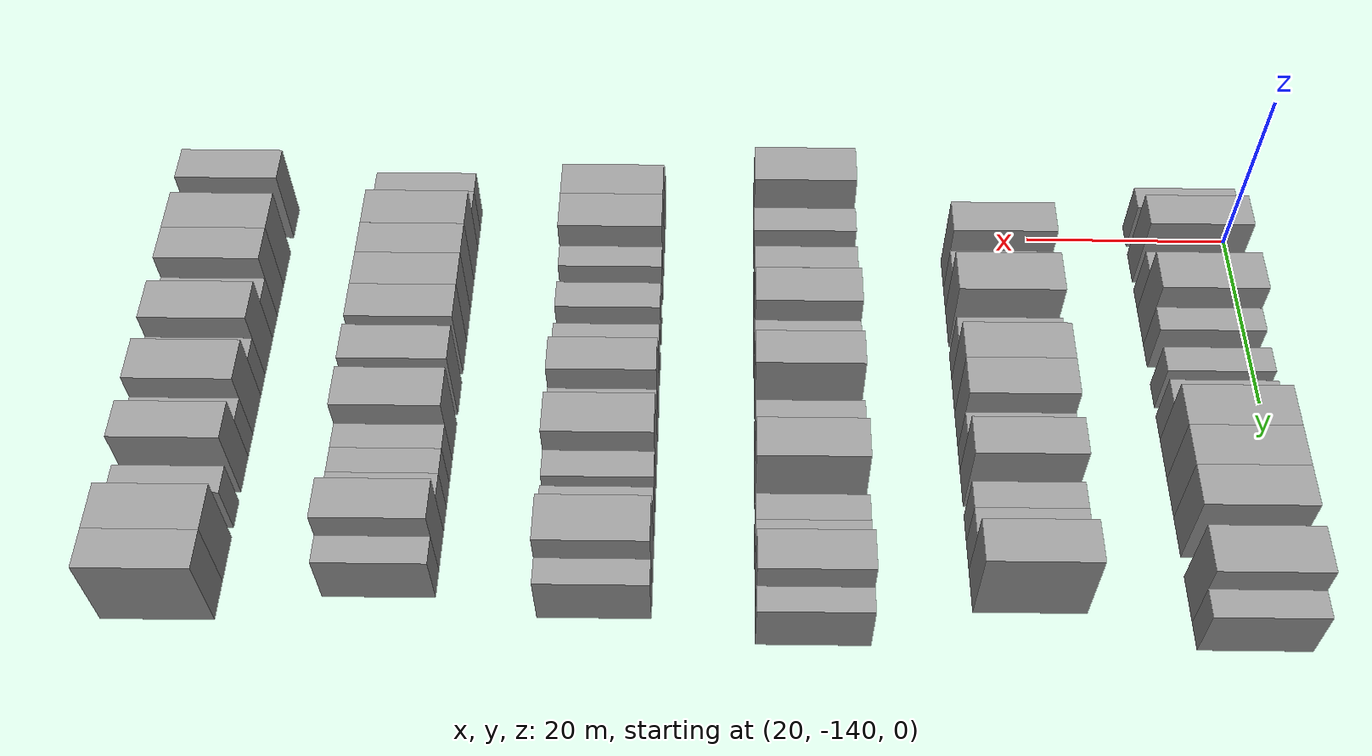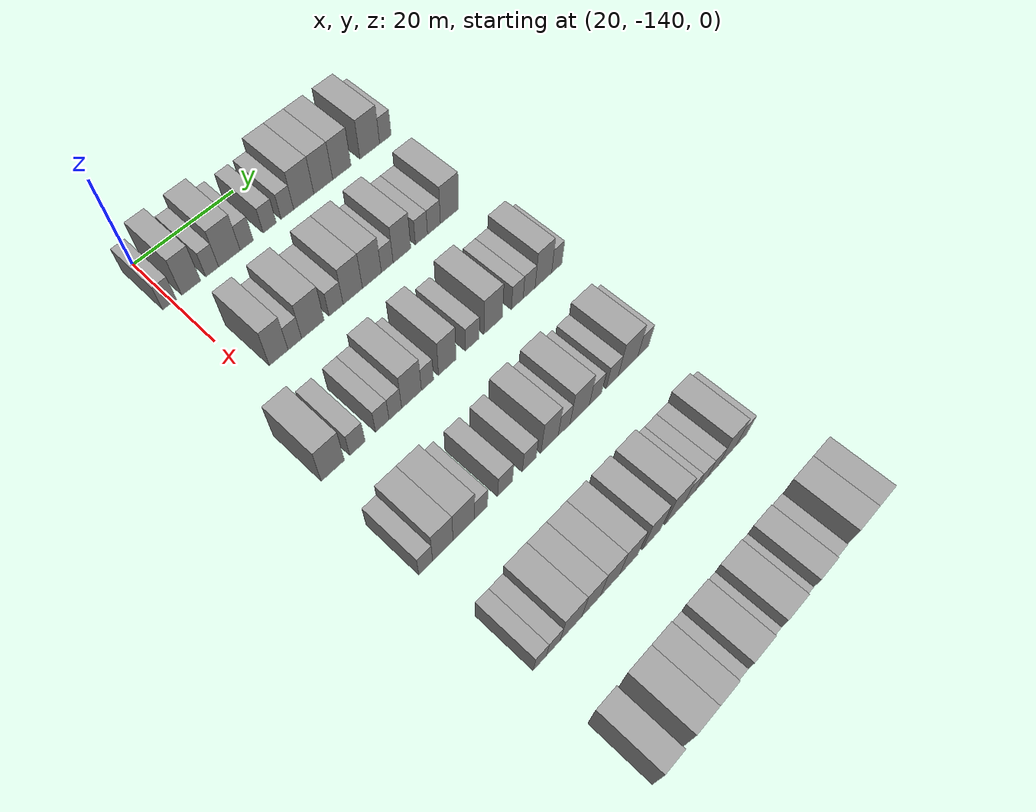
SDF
<sdf version="1.6">
 <world name="default">
  <model name="building_51">
   <static>1</static>
   <pose>25.0000 -140.6154 0 0.000000 0.000000 0.000000</pose>
   <link name="link">
    <pose>0 0 3.00 0 0 0</pose>
    <collision name="collision"><geometry><box><size>10.0000 2.6207 6.0000</size></box></geometry></collision>
    <visual name="visual">
     <cast_shadows>0</cast_shadows>
     <geometry><box><size>10.0000 2.6207 6.0000</size></box></geometry>
     <material>
      <script>
       <uri>model://grey_wall/materials/scripts</uri>
       <uri>model://grey_wall/materials/textures</uri>
       <name>vrc/grey_wall</name>
      </script>
     </material>
    </visual>
   </link>
  </model>
  <model name="building_52">
   <static>1</static>
   <pose>25.0000 -136.4687 0 0.000000 0.000000 0.000000</pose>
   <link name="link">
    <pose>0 0 4.50 0 0 0</pose>
    <collision name="collision"><geometry><box><size>10.0000 3.6727 9.0000</size></box></geometry></collision>
    <visual name="visual">
     <cast_shadows>0</cast_shadows>
     <geometry><box><size>10.0000 3.6727 9.0000</size></box></geometry>
     <material>
      <script>
       <uri>model://grey_wall/materials/scripts</uri>
       <uri>model://grey_wall/materials/textures</uri>
       <name>vrc/grey_wall</name>
      </script>
     </material>
    </visual>
   </link>
  </model>
  <model name="building_53">
   <static>1</static>
   <pose>25.0000 -132.3696 0 0.000000 0.000000 0.000000</pose>
   <link name="link">
    <pose>0 0 3.00 0 0 0</pose>
    <collision name="collision"><geometry><box><size>10.0000 2.5254 6.0000</size></box></geometry></collision>
    <visual name="visual">
     <cast_shadows>0</cast_shadows>
     <geometry><box><size>10.0000 2.5254 6.0000</size></box></geometry>
     <material>
      <script>
       <uri>model://grey_wall/materials/scripts</uri>
       <uri>model://grey_wall/materials/textures</uri>
       <name>vrc/grey_wall</name>
      </script>
     </material>
    </visual>
   </link>
  </model>
  <model name="building_54">
   <static>1</static>
   <pose>25.0000 -128.9481 0 0.000000 0.000000 0.000000</pose>
   <link name="link">
    <pose>0 0 4.50 0 0 0</pose>
    <collision name="collision"><geometry><box><size>10.0000 4.3176 9.0000</size></box></geometry></collision>
    <visual name="visual">
     <cast_shadows>0</cast_shadows>
     <geometry><box><size>10.0000 4.3176 9.0000</size></box></geometry>
     <material>
      <script>
       <uri>model://grey_wall/materials/scripts</uri>
       <uri>model://grey_wall/materials/textures</uri>
       <name>vrc/grey_wall</name>
      </script>
     </material>
    </visual>
   </link>
  </model>
  <model name="building_55">
   <static>1</static>
   <pose>25.0000 -125.4472 0 0.000000 0.000000 0.000000</pose>
   <link name="link">
    <pose>0 0 3.00 0 0 0</pose>
    <collision name="collision"><geometry><box><size>10.0000 2.6842 6.0000</size></box></geometry></collision>
    <visual name="visual">
     <cast_shadows>0</cast_shadows>
     <geometry><box><size>10.0000 2.6842 6.0000</size></box></geometry>
     <material>
      <script>
       <uri>model://grey_wall/materials/scripts</uri>
       <uri>model://grey_wall/materials/textures</uri>
       <name>vrc/grey_wall</name>
      </script>
     </material>
    </visual>
   </link>
  </model>
  <model name="building_56">
   <static>1</static>
   <pose>25.0000 -120.7396 0 0.000000 0.000000 0.000000</pose>
   <link name="link">
    <pose>0 0 3.00 0 0 0</pose>
    <collision name="collision"><geometry><box><size>10.0000 2.7311 6.0000</size></box></geometry></collision>
    <visual name="visual">
     <cast_shadows>0</cast_shadows>
     <geometry><box><size>10.0000 2.7311 6.0000</size></box></geometry>
     <material>
      <script>
       <uri>model://grey_wall/materials/scripts</uri>
       <uri>model://grey_wall/materials/textures</uri>
       <name>vrc/grey_wall</name>
      </script>
     </material>
    </visual>
   </link>
  </model>
  <model name="building_57">
   <static>1</static>
   <pose>25.0000 -117.0441 0 0.000000 0.000000 0.000000</pose>
   <link name="link">
    <pose>0 0 3.00 0 0 0</pose>
    <collision name="collision"><geometry><box><size>10.0000 2.6599 6.0000</size></box></geometry></collision>
    <visual name="visual">
     <cast_shadows>0</cast_shadows>
     <geometry><box><size>10.0000 2.6599 6.0000</size></box></geometry>
     <material>
      <script>
       <uri>model://grey_wall/materials/scripts</uri>
       <uri>model://grey_wall/materials/textures</uri>
       <name>vrc/grey_wall</name>
      </script>
     </material>
    </visual>
   </link>
  </model>
  <model name="building_58">
   <static>1</static>
   <pose>25.0000 -113.5493 0 0.000000 0.000000 0.000000</pose>
   <link name="link">
    <pose>0 0 4.50 0 0 0</pose>
    <collision name="collision"><geometry><box><size>10.0000 4.3296 9.0000</size></box></geometry></collision>
    <visual name="visual">
     <cast_shadows>0</cast_shadows>
     <geometry><box><size>10.0000 4.3296 9.0000</size></box></geometry>
     <material>
      <script>
       <uri>model://grey_wall/materials/scripts</uri>
       <uri>model://grey_wall/materials/textures</uri>
       <name>vrc/grey_wall</name>
      </script>
     </material>
    </visual>
   </link>
  </model>
  <model name="building_59">
   <static>1</static>
   <pose>25.0000 -109.3174 0 0.000000 0.000000 0.000000</pose>
   <link name="link">
    <pose>0 0 4.50 0 0 0</pose>
    <collision name="collision"><geometry><box><size>10.0000 4.1342 9.0000</size></box></geometry></collision>
    <visual name="visual">
     <cast_shadows>0</cast_shadows>
     <geometry><box><size>10.0000 4.1342 9.0000</size></box></geometry>
     <material>
      <script>
       <uri>model://grey_wall/materials/scripts</uri>
       <uri>model://grey_wall/materials/textures</uri>
       <name>vrc/grey_wall</name>
      </script>
     </material>
    </visual>
   </link>
  </model>
  <model name="building_60">
   <static>1</static>
   <pose>25.0000 -105.2141 0 0.000000 0.000000 0.000000</pose>
   <link name="link">
    <pose>0 0 4.50 0 0 0</pose>
    <collision name="collision"><geometry><box><size>10.0000 4.0724 9.0000</size></box></geometry></collision>
    <visual name="visual">
     <cast_shadows>0</cast_shadows>
     <geometry><box><size>10.0000 4.0724 9.0000</size></box></geometry>
     <material>
      <script>
       <uri>model://grey_wall/materials/scripts</uri>
       <uri>model://grey_wall/materials/textures</uri>
       <name>vrc/grey_wall</name>
      </script>
     </material>
    </visual>
   </link>
  </model>
  <model name="building_61">
   <static>1</static>
   <pose>25.0000 -98.9353 0 0.000000 0.000000 0.000000</pose>
   <link name="link">
    <pose>0 0 4.50 0 0 0</pose>
    <collision name="collision"><geometry><box><size>10.0000 4.4851 9.0000</size></box></geometry></collision>
    <visual name="visual">
     <cast_shadows>0</cast_shadows>
     <geometry><box><size>10.0000 4.4851 9.0000</size></box></geometry>
     <material>
      <script>
       <uri>model://grey_wall/materials/scripts</uri>
       <uri>model://grey_wall/materials/textures</uri>
       <name>vrc/grey_wall</name>
      </script>
     </material>
    </visual>
   </link>
  </model>
  <model name="building_62">
   <static>1</static>
   <pose>25.0000 -95.3557 0 0.000000 0.000000 0.000000</pose>
   <link name="link">
    <pose>0 0 3.00 0 0 0</pose>
    <collision name="collision"><geometry><box><size>10.0000 2.6743 6.0000</size></box></geometry></collision>
    <visual name="visual">
     <cast_shadows>0</cast_shadows>
     <geometry><box><size>10.0000 2.6743 6.0000</size></box></geometry>
     <material>
      <script>
       <uri>model://grey_wall/materials/scripts</uri>
       <uri>model://grey_wall/materials/textures</uri>
       <name>vrc/grey_wall</name>
      </script>
     </material>
    </visual>
   </link>
  </model>
  <model name="building_223">
   <static>1</static>
   <pose>44.0000 -135.3508 0 0.000000 0.000000 0.000000</pose>
   <link name="link">
    <pose>0 0 4.50 0 0 0</pose>
    <collision name="collision"><geometry><box><size>10.0000 3.6212 9.0000</size></box></geometry></collision>
    <visual name="visual">
     <cast_shadows>0</cast_shadows>
     <geometry><box><size>10.0000 3.6212 9.0000</size></box></geometry>
     <material>
      <script>
       <uri>model://grey_wall/materials/scripts</uri>
       <uri>model://grey_wall/materials/textures</uri>
       <name>vrc/grey_wall</name>
      </script>
     </material>
    </visual>
   </link>
  </model>
  <model name="building_224">
   <static>1</static>
   <pose>44.0000 -132.1997 0 0.000000 0.000000 0.000000</pose>
   <link name="link">
    <pose>0 0 3.00 0 0 0</pose>
    <collision name="collision"><geometry><box><size>10.0000 2.6811 6.0000</size></box></geometry></collision>
    <visual name="visual">
     <cast_shadows>0</cast_shadows>
     <geometry><box><size>10.0000 2.6811 6.0000</size></box></geometry>
     <material>
      <script>
       <uri>model://grey_wall/materials/scripts</uri>
       <uri>model://grey_wall/materials/textures</uri>
       <name>vrc/grey_wall</name>
      </script>
     </material>
    </visual>
   </link>
  </model>
  <model name="building_225">
   <static>1</static>
   <pose>44.0000 -128.6214 0 0.000000 0.000000 0.000000</pose>
   <link name="link">
    <pose>0 0 4.50 0 0 0</pose>
    <collision name="collision"><geometry><box><size>10.0000 4.4756 9.0000</size></box></geometry></collision>
    <visual name="visual">
     <cast_shadows>0</cast_shadows>
     <geometry><box><size>10.0000 4.4756 9.0000</size></box></geometry>
     <material>
      <script>
       <uri>model://grey_wall/materials/scripts</uri>
       <uri>model://grey_wall/materials/textures</uri>
       <name>vrc/grey_wall</name>
      </script>
     </material>
    </visual>
   </link>
  </model>
  <model name="building_226">
   <static>1</static>
   <pose>44.0000 -123.9453 0 0.000000 0.000000 0.000000</pose>
   <link name="link">
    <pose>0 0 3.00 0 0 0</pose>
    <collision name="collision"><geometry><box><size>10.0000 2.8765 6.0000</size></box></geometry></collision>
    <visual name="visual">
     <cast_shadows>0</cast_shadows>
     <geometry><box><size>10.0000 2.8765 6.0000</size></box></geometry>
     <material>
      <script>
       <uri>model://grey_wall/materials/scripts</uri>
       <uri>model://grey_wall/materials/textures</uri>
       <name>vrc/grey_wall</name>
      </script>
     </material>
    </visual>
   </link>
  </model>
  <model name="building_227">
   <static>1</static>
   <pose>44.0000 -120.5067 0 0.000000 0.000000 0.000000</pose>
   <link name="link">
    <pose>0 0 4.50 0 0 0</pose>
    <collision name="collision"><geometry><box><size>10.0000 4.0007 9.0000</size></box></geometry></collision>
    <visual name="visual">
     <cast_shadows>0</cast_shadows>
     <geometry><box><size>10.0000 4.0007 9.0000</size></box></geometry>
     <material>
      <script>
       <uri>model://grey_wall/materials/scripts</uri>
       <uri>model://grey_wall/materials/textures</uri>
       <name>vrc/grey_wall</name>
      </script>
     </material>
    </visual>
   </link>
  </model>
  <model name="building_228">
   <static>1</static>
   <pose>44.0000 -116.5102 0 0.000000 0.000000 0.000000</pose>
   <link name="link">
    <pose>0 0 4.50 0 0 0</pose>
    <collision name="collision"><geometry><box><size>10.0000 3.9921 9.0000</size></box></geometry></collision>
    <visual name="visual">
     <cast_shadows>0</cast_shadows>
     <geometry><box><size>10.0000 3.9921 9.0000</size></box></geometry>
     <material>
      <script>
       <uri>model://grey_wall/materials/scripts</uri>
       <uri>model://grey_wall/materials/textures</uri>
       <name>vrc/grey_wall</name>
      </script>
     </material>
    </visual>
   </link>
  </model>
  <model name="building_229">
   <static>1</static>
   <pose>44.0000 -113.2569 0 0.000000 0.000000 0.000000</pose>
   <link name="link">
    <pose>0 0 3.00 0 0 0</pose>
    <collision name="collision"><geometry><box><size>10.0000 2.5146 6.0000</size></box></geometry></collision>
    <visual name="visual">
     <cast_shadows>0</cast_shadows>
     <geometry><box><size>10.0000 2.5146 6.0000</size></box></geometry>
     <material>
      <script>
       <uri>model://grey_wall/materials/scripts</uri>
       <uri>model://grey_wall/materials/textures</uri>
       <name>vrc/grey_wall</name>
      </script>
     </material>
    </visual>
   </link>
  </model>
  <model name="building_230">
   <static>1</static>
   <pose>44.0000 -110.0744 0 0.000000 0.000000 0.000000</pose>
   <link name="link">
    <pose>0 0 4.50 0 0 0</pose>
    <collision name="collision"><geometry><box><size>10.0000 3.8503 9.0000</size></box></geometry></collision>
    <visual name="visual">
     <cast_shadows>0</cast_shadows>
     <geometry><box><size>10.0000 3.8503 9.0000</size></box></geometry>
     <material>
      <script>
       <uri>model://grey_wall/materials/scripts</uri>
       <uri>model://grey_wall/materials/textures</uri>
       <name>vrc/grey_wall</name>
      </script>
     </material>
    </visual>
   </link>
  </model>
  <model name="building_231">
   <static>1</static>
   <pose>44.0000 -105.8061 0 0.000000 0.000000 0.000000</pose>
   <link name="link">
    <pose>0 0 3.00 0 0 0</pose>
    <collision name="collision"><geometry><box><size>10.0000 2.6864 6.0000</size></box></geometry></collision>
    <visual name="visual">
     <cast_shadows>0</cast_shadows>
     <geometry><box><size>10.0000 2.6864 6.0000</size></box></geometry>
     <material>
      <script>
       <uri>model://grey_wall/materials/scripts</uri>
       <uri>model://grey_wall/materials/textures</uri>
       <name>vrc/grey_wall</name>
      </script>
     </material>
    </visual>
   </link>
  </model>
  <model name="building_232">
   <static>1</static>
   <pose>44.0000 -103.0163 0 0.000000 0.000000 0.000000</pose>
   <link name="link">
    <pose>0 0 3.00 0 0 0</pose>
    <collision name="collision"><geometry><box><size>10.0000 2.8933 6.0000</size></box></geometry></collision>
    <visual name="visual">
     <cast_shadows>0</cast_shadows>
     <geometry><box><size>10.0000 2.8933 6.0000</size></box></geometry>
     <material>
      <script>
       <uri>model://grey_wall/materials/scripts</uri>
       <uri>model://grey_wall/materials/textures</uri>
       <name>vrc/grey_wall</name>
      </script>
     </material>
    </visual>
   </link>
  </model>
  <model name="building_233">
   <static>1</static>
   <pose>44.0000 -99.4954 0 0.000000 0.000000 0.000000</pose>
   <link name="link">
    <pose>0 0 4.50 0 0 0</pose>
    <collision name="collision"><geometry><box><size>10.0000 4.1485 9.0000</size></box></geometry></collision>
    <visual name="visual">
     <cast_shadows>0</cast_shadows>
     <geometry><box><size>10.0000 4.1485 9.0000</size></box></geometry>
     <material>
      <script>
       <uri>model://grey_wall/materials/scripts</uri>
       <uri>model://grey_wall/materials/textures</uri>
       <name>vrc/grey_wall</name>
      </script>
     </material>
    </visual>
   </link>
  </model>
  <model name="building_393">
   <static>1</static>
   <pose>63.0000 -142.0065 0 0.000000 0.000000 0.000000</pose>
   <link name="link">
    <pose>0 0 4.50 0 0 0</pose>
    <collision name="collision"><geometry><box><size>10.0000 4.3251 9.0000</size></box></geometry></collision>
    <visual name="visual">
     <cast_shadows>0</cast_shadows>
     <geometry><box><size>10.0000 4.3251 9.0000</size></box></geometry>
     <material>
      <script>
       <uri>model://grey_wall/materials/scripts</uri>
       <uri>model://grey_wall/materials/textures</uri>
       <name>vrc/grey_wall</name>
      </script>
     </material>
    </visual>
   </link>
  </model>
  <model name="building_394">
   <static>1</static>
   <pose>63.0000 -137.3670 0 0.000000 0.000000 0.000000</pose>
   <link name="link">
    <pose>0 0 3.00 0 0 0</pose>
    <collision name="collision"><geometry><box><size>10.0000 2.9540 6.0000</size></box></geometry></collision>
    <visual name="visual">
     <cast_shadows>0</cast_shadows>
     <geometry><box><size>10.0000 2.9540 6.0000</size></box></geometry>
     <material>
      <script>
       <uri>model://grey_wall/materials/scripts</uri>
       <uri>model://grey_wall/materials/textures</uri>
       <name>vrc/grey_wall</name>
      </script>
     </material>
    </visual>
   </link>
  </model>
  <model name="building_395">
   <static>1</static>
   <pose>63.0000 -132.5584 0 0.000000 0.000000 0.000000</pose>
   <link name="link">
    <pose>0 0 3.00 0 0 0</pose>
    <collision name="collision"><geometry><box><size>10.0000 2.6632 6.0000</size></box></geometry></collision>
    <visual name="visual">
     <cast_shadows>0</cast_shadows>
     <geometry><box><size>10.0000 2.6632 6.0000</size></box></geometry>
     <material>
      <script>
       <uri>model://grey_wall/materials/scripts</uri>
       <uri>model://grey_wall/materials/textures</uri>
       <name>vrc/grey_wall</name>
      </script>
     </material>
    </visual>
   </link>
  </model>
  <model name="building_396">
   <static>1</static>
   <pose>63.0000 -129.9865 0 0.000000 0.000000 0.000000</pose>
   <link name="link">
    <pose>0 0 3.00 0 0 0</pose>
    <collision name="collision"><geometry><box><size>10.0000 2.4807 6.0000</size></box></geometry></collision>
    <visual name="visual">
     <cast_shadows>0</cast_shadows>
     <geometry><box><size>10.0000 2.4807 6.0000</size></box></geometry>
     <material>
      <script>
       <uri>model://grey_wall/materials/scripts</uri>
       <uri>model://grey_wall/materials/textures</uri>
       <name>vrc/grey_wall</name>
      </script>
     </material>
    </visual>
   </link>
  </model>
  <model name="building_397">
   <static>1</static>
   <pose>63.0000 -126.7613 0 0.000000 0.000000 0.000000</pose>
   <link name="link">
    <pose>0 0 4.50 0 0 0</pose>
    <collision name="collision"><geometry><box><size>10.0000 3.9696 9.0000</size></box></geometry></collision>
    <visual name="visual">
     <cast_shadows>0</cast_shadows>
     <geometry><box><size>10.0000 3.9696 9.0000</size></box></geometry>
     <material>
      <script>
       <uri>model://grey_wall/materials/scripts</uri>
       <uri>model://grey_wall/materials/textures</uri>
       <name>vrc/grey_wall</name>
      </script>
     </material>
    </visual>
   </link>
  </model>
  <model name="building_398">
   <static>1</static>
   <pose>63.0000 -123.5335 0 0.000000 0.000000 0.000000</pose>
   <link name="link">
    <pose>0 0 3.00 0 0 0</pose>
    <collision name="collision"><geometry><box><size>10.0000 2.4860 6.0000</size></box></geometry></collision>
    <visual name="visual">
     <cast_shadows>0</cast_shadows>
     <geometry><box><size>10.0000 2.4860 6.0000</size></box></geometry>
     <material>
      <script>
       <uri>model://grey_wall/materials/scripts</uri>
       <uri>model://grey_wall/materials/textures</uri>
       <name>vrc/grey_wall</name>
      </script>
     </material>
    </visual>
   </link>
  </model>
  <model name="building_399">
   <static>1</static>
   <pose>63.0000 -119.4586 0 0.000000 0.000000 0.000000</pose>
   <link name="link">
    <pose>0 0 4.50 0 0 0</pose>
    <collision name="collision"><geometry><box><size>10.0000 3.6638 9.0000</size></box></geometry></collision>
    <visual name="visual">
     <cast_shadows>0</cast_shadows>
     <geometry><box><size>10.0000 3.6638 9.0000</size></box></geometry>
     <material>
      <script>
       <uri>model://grey_wall/materials/scripts</uri>
       <uri>model://grey_wall/materials/textures</uri>
       <name>vrc/grey_wall</name>
      </script>
     </material>
    </visual>
   </link>
  </model>
  <model name="building_400">
   <static>1</static>
   <pose>63.0000 -114.1559 0 0.000000 0.000000 0.000000</pose>
   <link name="link">
    <pose>0 0 3.00 0 0 0</pose>
    <collision name="collision"><geometry><box><size>10.0000 2.9416 6.0000</size></box></geometry></collision>
    <visual name="visual">
     <cast_shadows>0</cast_shadows>
     <geometry><box><size>10.0000 2.9416 6.0000</size></box></geometry>
     <material>
      <script>
       <uri>model://grey_wall/materials/scripts</uri>
       <uri>model://grey_wall/materials/textures</uri>
       <name>vrc/grey_wall</name>
      </script>
     </material>
    </visual>
   </link>
  </model>
  <model name="building_401">
   <static>1</static>
   <pose>63.0000 -109.6640 0 0.000000 0.000000 0.000000</pose>
   <link name="link">
    <pose>0 0 4.50 0 0 0</pose>
    <collision name="collision"><geometry><box><size>10.0000 4.0421 9.0000</size></box></geometry></collision>
    <visual name="visual">
     <cast_shadows>0</cast_shadows>
     <geometry><box><size>10.0000 4.0421 9.0000</size></box></geometry>
     <material>
      <script>
       <uri>model://grey_wall/materials/scripts</uri>
       <uri>model://grey_wall/materials/textures</uri>
       <name>vrc/grey_wall</name>
      </script>
     </material>
    </visual>
   </link>
  </model>
  <model name="building_402">
   <static>1</static>
   <pose>63.0000 -104.3299 0 0.000000 0.000000 0.000000</pose>
   <link name="link">
    <pose>0 0 3.00 0 0 0</pose>
    <collision name="collision"><geometry><box><size>10.0000 2.6261 6.0000</size></box></geometry></collision>
    <visual name="visual">
     <cast_shadows>0</cast_shadows>
     <geometry><box><size>10.0000 2.6261 6.0000</size></box></geometry>
     <material>
      <script>
       <uri>model://grey_wall/materials/scripts</uri>
       <uri>model://grey_wall/materials/textures</uri>
       <name>vrc/grey_wall</name>
      </script>
     </material>
    </visual>
   </link>
  </model>
  <model name="building_403">
   <static>1</static>
   <pose>63.0000 -101.6660 0 0.000000 0.000000 0.000000</pose>
   <link name="link">
    <pose>0 0 3.00 0 0 0</pose>
    <collision name="collision"><geometry><box><size>10.0000 2.7016 6.0000</size></box></geometry></collision>
    <visual name="visual">
     <cast_shadows>0</cast_shadows>
     <geometry><box><size>10.0000 2.7016 6.0000</size></box></geometry>
     <material>
      <script>
       <uri>model://grey_wall/materials/scripts</uri>
       <uri>model://grey_wall/materials/textures</uri>
       <name>vrc/grey_wall</name>
      </script>
     </material>
    </visual>
   </link>
  </model>
  <model name="building_404">
   <static>1</static>
   <pose>63.0000 -98.4084 0 0.000000 0.000000 0.000000</pose>
   <link name="link">
    <pose>0 0 4.50 0 0 0</pose>
    <collision name="collision"><geometry><box><size>10.0000 3.8136 9.0000</size></box></geometry></collision>
    <visual name="visual">
     <cast_shadows>0</cast_shadows>
     <geometry><box><size>10.0000 3.8136 9.0000</size></box></geometry>
     <material>
      <script>
       <uri>model://grey_wall/materials/scripts</uri>
       <uri>model://grey_wall/materials/textures</uri>
       <name>vrc/grey_wall</name>
      </script>
     </material>
    </visual>
   </link>
  </model>
  <model name="building_405">
   <static>1</static>
   <pose>63.0000 -95.2938 0 0.000000 0.000000 0.000000</pose>
   <link name="link">
    <pose>0 0 3.00 0 0 0</pose>
    <collision name="collision"><geometry><box><size>10.0000 2.4156 6.0000</size></box></geometry></collision>
    <visual name="visual">
     <cast_shadows>0</cast_shadows>
     <geometry><box><size>10.0000 2.4156 6.0000</size></box></geometry>
     <material>
      <script>
       <uri>model://grey_wall/materials/scripts</uri>
       <uri>model://grey_wall/materials/textures</uri>
       <name>vrc/grey_wall</name>
      </script>
     </material>
    </visual>
   </link>
  </model>
  <model name="building_571">
   <static>1</static>
   <pose>82.0000 -142.9501 0 0.000000 0.000000 0.000000</pose>
   <link name="link">
    <pose>0 0 3.00 0 0 0</pose>
    <collision name="collision"><geometry><box><size>10.0000 2.5818 6.0000</size></box></geometry></collision>
    <visual name="visual">
     <cast_shadows>0</cast_shadows>
     <geometry><box><size>10.0000 2.5818 6.0000</size></box></geometry>
     <material>
      <script>
       <uri>model://grey_wall/materials/scripts</uri>
       <uri>model://grey_wall/materials/textures</uri>
       <name>vrc/grey_wall</name>
      </script>
     </material>
    </visual>
   </link>
  </model>
  <model name="building_572">
   <static>1</static>
   <pose>82.0000 -139.7376 0 0.000000 0.000000 0.000000</pose>
   <link name="link">
    <pose>0 0 4.50 0 0 0</pose>
    <collision name="collision"><geometry><box><size>10.0000 3.8432 9.0000</size></box></geometry></collision>
    <visual name="visual">
     <cast_shadows>0</cast_shadows>
     <geometry><box><size>10.0000 3.8432 9.0000</size></box></geometry>
     <material>
      <script>
       <uri>model://grey_wall/materials/scripts</uri>
       <uri>model://grey_wall/materials/textures</uri>
       <name>vrc/grey_wall</name>
      </script>
     </material>
    </visual>
   </link>
  </model>
  <model name="building_573">
   <static>1</static>
   <pose>82.0000 -135.7377 0 0.000000 0.000000 0.000000</pose>
   <link name="link">
    <pose>0 0 4.50 0 0 0</pose>
    <collision name="collision"><geometry><box><size>10.0000 4.1565 9.0000</size></box></geometry></collision>
    <visual name="visual">
     <cast_shadows>0</cast_shadows>
     <geometry><box><size>10.0000 4.1565 9.0000</size></box></geometry>
     <material>
      <script>
       <uri>model://grey_wall/materials/scripts</uri>
       <uri>model://grey_wall/materials/textures</uri>
       <name>vrc/grey_wall</name>
      </script>
     </material>
    </visual>
   </link>
  </model>
  <model name="building_574">
   <static>1</static>
   <pose>82.0000 -132.3970 0 0.000000 0.000000 0.000000</pose>
   <link name="link">
    <pose>0 0 3.00 0 0 0</pose>
    <collision name="collision"><geometry><box><size>10.0000 2.5249 6.0000</size></box></geometry></collision>
    <visual name="visual">
     <cast_shadows>0</cast_shadows>
     <geometry><box><size>10.0000 2.5249 6.0000</size></box></geometry>
     <material>
      <script>
       <uri>model://grey_wall/materials/scripts</uri>
       <uri>model://grey_wall/materials/textures</uri>
       <name>vrc/grey_wall</name>
      </script>
     </material>
    </visual>
   </link>
  </model>
  <model name="building_575">
   <static>1</static>
   <pose>82.0000 -127.6400 0 0.000000 0.000000 0.000000</pose>
   <link name="link">
    <pose>0 0 3.00 0 0 0</pose>
    <collision name="collision"><geometry><box><size>10.0000 2.9891 6.0000</size></box></geometry></collision>
    <visual name="visual">
     <cast_shadows>0</cast_shadows>
     <geometry><box><size>10.0000 2.9891 6.0000</size></box></geometry>
     <material>
      <script>
       <uri>model://grey_wall/materials/scripts</uri>
       <uri>model://grey_wall/materials/textures</uri>
       <name>vrc/grey_wall</name>
      </script>
     </material>
    </visual>
   </link>
  </model>
  <model name="building_576">
   <static>1</static>
   <pose>82.0000 -122.7217 0 0.000000 0.000000 0.000000</pose>
   <link name="link">
    <pose>0 0 3.00 0 0 0</pose>
    <collision name="collision"><geometry><box><size>10.0000 2.8474 6.0000</size></box></geometry></collision>
    <visual name="visual">
     <cast_shadows>0</cast_shadows>
     <geometry><box><size>10.0000 2.8474 6.0000</size></box></geometry>
     <material>
      <script>
       <uri>model://grey_wall/materials/scripts</uri>
       <uri>model://grey_wall/materials/textures</uri>
       <name>vrc/grey_wall</name>
      </script>
     </material>
    </visual>
   </link>
  </model>
  <model name="building_577">
   <static>1</static>
   <pose>82.0000 -118.4914 0 0.000000 0.000000 0.000000</pose>
   <link name="link">
    <pose>0 0 4.50 0 0 0</pose>
    <collision name="collision"><geometry><box><size>10.0000 3.6134 9.0000</size></box></geometry></collision>
    <visual name="visual">
     <cast_shadows>0</cast_shadows>
     <geometry><box><size>10.0000 3.6134 9.0000</size></box></geometry>
     <material>
      <script>
       <uri>model://grey_wall/materials/scripts</uri>
       <uri>model://grey_wall/materials/textures</uri>
       <name>vrc/grey_wall</name>
      </script>
     </material>
    </visual>
   </link>
  </model>
  <model name="building_578">
   <static>1</static>
   <pose>82.0000 -115.4076 0 0.000000 0.000000 0.000000</pose>
   <link name="link">
    <pose>0 0 3.00 0 0 0</pose>
    <collision name="collision"><geometry><box><size>10.0000 2.5542 6.0000</size></box></geometry></collision>
    <visual name="visual">
     <cast_shadows>0</cast_shadows>
     <geometry><box><size>10.0000 2.5542 6.0000</size></box></geometry>
     <material>
      <script>
       <uri>model://grey_wall/materials/scripts</uri>
       <uri>model://grey_wall/materials/textures</uri>
       <name>vrc/grey_wall</name>
      </script>
     </material>
    </visual>
   </link>
  </model>
  <model name="building_579">
   <static>1</static>
   <pose>82.0000 -112.0254 0 0.000000 0.000000 0.000000</pose>
   <link name="link">
    <pose>0 0 4.50 0 0 0</pose>
    <collision name="collision"><geometry><box><size>10.0000 4.2101 9.0000</size></box></geometry></collision>
    <visual name="visual">
     <cast_shadows>0</cast_shadows>
     <geometry><box><size>10.0000 4.2101 9.0000</size></box></geometry>
     <material>
      <script>
       <uri>model://grey_wall/materials/scripts</uri>
       <uri>model://grey_wall/materials/textures</uri>
       <name>vrc/grey_wall</name>
      </script>
     </material>
    </visual>
   </link>
  </model>
  <model name="building_580">
   <static>1</static>
   <pose>82.0000 -108.5517 0 0.000000 0.000000 0.000000</pose>
   <link name="link">
    <pose>0 0 3.00 0 0 0</pose>
    <collision name="collision"><geometry><box><size>10.0000 2.7372 6.0000</size></box></geometry></collision>
    <visual name="visual">
     <cast_shadows>0</cast_shadows>
     <geometry><box><size>10.0000 2.7372 6.0000</size></box></geometry>
     <material>
      <script>
       <uri>model://grey_wall/materials/scripts</uri>
       <uri>model://grey_wall/materials/textures</uri>
       <name>vrc/grey_wall</name>
      </script>
     </material>
    </visual>
   </link>
  </model>
  <model name="building_581">
   <static>1</static>
   <pose>82.0000 -104.8235 0 0.000000 0.000000 0.000000</pose>
   <link name="link">
    <pose>0 0 3.00 0 0 0</pose>
    <collision name="collision"><geometry><box><size>10.0000 2.7193 6.0000</size></box></geometry></collision>
    <visual name="visual">
     <cast_shadows>0</cast_shadows>
     <geometry><box><size>10.0000 2.7193 6.0000</size></box></geometry>
     <material>
      <script>
       <uri>model://grey_wall/materials/scripts</uri>
       <uri>model://grey_wall/materials/textures</uri>
       <name>vrc/grey_wall</name>
      </script>
     </material>
    </visual>
   </link>
  </model>
  <model name="building_582">
   <static>1</static>
   <pose>82.0000 -101.2158 0 0.000000 0.000000 0.000000</pose>
   <link name="link">
    <pose>0 0 4.50 0 0 0</pose>
    <collision name="collision"><geometry><box><size>10.0000 4.4960 9.0000</size></box></geometry></collision>
    <visual name="visual">
     <cast_shadows>0</cast_shadows>
     <geometry><box><size>10.0000 4.4960 9.0000</size></box></geometry>
     <material>
      <script>
       <uri>model://grey_wall/materials/scripts</uri>
       <uri>model://grey_wall/materials/textures</uri>
       <name>vrc/grey_wall</name>
      </script>
     </material>
    </visual>
   </link>
  </model>
  <model name="building_583">
   <static>1</static>
   <pose>82.0000 -97.6977 0 0.000000 0.000000 0.000000</pose>
   <link name="link">
    <pose>0 0 3.00 0 0 0</pose>
    <collision name="collision"><geometry><box><size>10.0000 2.5402 6.0000</size></box></geometry></collision>
    <visual name="visual">
     <cast_shadows>0</cast_shadows>
     <geometry><box><size>10.0000 2.5402 6.0000</size></box></geometry>
     <material>
      <script>
       <uri>model://grey_wall/materials/scripts</uri>
       <uri>model://grey_wall/materials/textures</uri>
       <name>vrc/grey_wall</name>
      </script>
     </material>
    </visual>
   </link>
  </model>
  <model name="building_748">
   <static>1</static>
   <pose>101.0000 -141.8293 0 0.000000 0.000000 0.000000</pose>
   <link name="link">
    <pose>0 0 3.00 0 0 0</pose>
    <collision name="collision"><geometry><box><size>10.0000 2.4516 6.0000</size></box></geometry></collision>
    <visual name="visual">
     <cast_shadows>0</cast_shadows>
     <geometry><box><size>10.0000 2.4516 6.0000</size></box></geometry>
     <material>
      <script>
       <uri>model://grey_wall/materials/scripts</uri>
       <uri>model://grey_wall/materials/textures</uri>
       <name>vrc/grey_wall</name>
      </script>
     </material>
    </visual>
   </link>
  </model>
  <model name="building_749">
   <static>1</static>
   <pose>101.0000 -139.2995 0 0.000000 0.000000 0.000000</pose>
   <link name="link">
    <pose>0 0 3.00 0 0 0</pose>
    <collision name="collision"><geometry><box><size>10.0000 2.6080 6.0000</size></box></geometry></collision>
    <visual name="visual">
     <cast_shadows>0</cast_shadows>
     <geometry><box><size>10.0000 2.6080 6.0000</size></box></geometry>
     <material>
      <script>
       <uri>model://grey_wall/materials/scripts</uri>
       <uri>model://grey_wall/materials/textures</uri>
       <name>vrc/grey_wall</name>
      </script>
     </material>
    </visual>
   </link>
  </model>
  <model name="building_750">
   <static>1</static>
   <pose>101.0000 -135.8987 0 0.000000 0.000000 0.000000</pose>
   <link name="link">
    <pose>0 0 4.50 0 0 0</pose>
    <collision name="collision"><geometry><box><size>10.0000 4.1936 9.0000</size></box></geometry></collision>
    <visual name="visual">
     <cast_shadows>0</cast_shadows>
     <geometry><box><size>10.0000 4.1936 9.0000</size></box></geometry>
     <material>
      <script>
       <uri>model://grey_wall/materials/scripts</uri>
       <uri>model://grey_wall/materials/textures</uri>
       <name>vrc/grey_wall</name>
      </script>
     </material>
    </visual>
   </link>
  </model>
  <model name="building_751">
   <static>1</static>
   <pose>101.0000 -131.9583 0 0.000000 0.000000 0.000000</pose>
   <link name="link">
    <pose>0 0 4.50 0 0 0</pose>
    <collision name="collision"><geometry><box><size>10.0000 3.6871 9.0000</size></box></geometry></collision>
    <visual name="visual">
     <cast_shadows>0</cast_shadows>
     <geometry><box><size>10.0000 3.6871 9.0000</size></box></geometry>
     <material>
      <script>
       <uri>model://grey_wall/materials/scripts</uri>
       <uri>model://grey_wall/materials/textures</uri>
       <name>vrc/grey_wall</name>
      </script>
     </material>
    </visual>
   </link>
  </model>
  <model name="building_752">
   <static>1</static>
   <pose>101.0000 -128.1986 0 0.000000 0.000000 0.000000</pose>
   <link name="link">
    <pose>0 0 4.50 0 0 0</pose>
    <collision name="collision"><geometry><box><size>10.0000 3.8325 9.0000</size></box></geometry></collision>
    <visual name="visual">
     <cast_shadows>0</cast_shadows>
     <geometry><box><size>10.0000 3.8325 9.0000</size></box></geometry>
     <material>
      <script>
       <uri>model://grey_wall/materials/scripts</uri>
       <uri>model://grey_wall/materials/textures</uri>
       <name>vrc/grey_wall</name>
      </script>
     </material>
    </visual>
   </link>
  </model>
  <model name="building_753">
   <static>1</static>
   <pose>101.0000 -124.3731 0 0.000000 0.000000 0.000000</pose>
   <link name="link">
    <pose>0 0 4.50 0 0 0</pose>
    <collision name="collision"><geometry><box><size>10.0000 3.8185 9.0000</size></box></geometry></collision>
    <visual name="visual">
     <cast_shadows>0</cast_shadows>
     <geometry><box><size>10.0000 3.8185 9.0000</size></box></geometry>
     <material>
      <script>
       <uri>model://grey_wall/materials/scripts</uri>
       <uri>model://grey_wall/materials/textures</uri>
       <name>vrc/grey_wall</name>
      </script>
     </material>
    </visual>
   </link>
  </model>
  <model name="building_754">
   <static>1</static>
   <pose>101.0000 -119.5640 0 0.000000 0.000000 0.000000</pose>
   <link name="link">
    <pose>0 0 4.50 0 0 0</pose>
    <collision name="collision"><geometry><box><size>10.0000 3.7996 9.0000</size></box></geometry></collision>
    <visual name="visual">
     <cast_shadows>0</cast_shadows>
     <geometry><box><size>10.0000 3.7996 9.0000</size></box></geometry>
     <material>
      <script>
       <uri>model://grey_wall/materials/scripts</uri>
       <uri>model://grey_wall/materials/textures</uri>
       <name>vrc/grey_wall</name>
      </script>
     </material>
    </visual>
   </link>
  </model>
  <model name="building_755">
   <static>1</static>
   <pose>101.0000 -114.5919 0 0.000000 0.000000 0.000000</pose>
   <link name="link">
    <pose>0 0 4.50 0 0 0</pose>
    <collision name="collision"><geometry><box><size>10.0000 4.1445 9.0000</size></box></geometry></collision>
    <visual name="visual">
     <cast_shadows>0</cast_shadows>
     <geometry><box><size>10.0000 4.1445 9.0000</size></box></geometry>
     <material>
      <script>
       <uri>model://grey_wall/materials/scripts</uri>
       <uri>model://grey_wall/materials/textures</uri>
       <name>vrc/grey_wall</name>
      </script>
     </material>
    </visual>
   </link>
  </model>
  <model name="building_756">
   <static>1</static>
   <pose>101.0000 -111.2377 0 0.000000 0.000000 0.000000</pose>
   <link name="link">
    <pose>0 0 3.00 0 0 0</pose>
    <collision name="collision"><geometry><box><size>10.0000 2.5640 6.0000</size></box></geometry></collision>
    <visual name="visual">
     <cast_shadows>0</cast_shadows>
     <geometry><box><size>10.0000 2.5640 6.0000</size></box></geometry>
     <material>
      <script>
       <uri>model://grey_wall/materials/scripts</uri>
       <uri>model://grey_wall/materials/textures</uri>
       <name>vrc/grey_wall</name>
      </script>
     </material>
    </visual>
   </link>
  </model>
  <model name="building_757">
   <static>1</static>
   <pose>101.0000 -108.6574 0 0.000000 0.000000 0.000000</pose>
   <link name="link">
    <pose>0 0 3.00 0 0 0</pose>
    <collision name="collision"><geometry><box><size>10.0000 2.5964 6.0000</size></box></geometry></collision>
    <visual name="visual">
     <cast_shadows>0</cast_shadows>
     <geometry><box><size>10.0000 2.5964 6.0000</size></box></geometry>
     <material>
      <script>
       <uri>model://grey_wall/materials/scripts</uri>
       <uri>model://grey_wall/materials/textures</uri>
       <name>vrc/grey_wall</name>
      </script>
     </material>
    </visual>
   </link>
  </model>
  <model name="building_758">
   <static>1</static>
   <pose>101.0000 -106.1154 0 0.000000 0.000000 0.000000</pose>
   <link name="link">
    <pose>0 0 3.00 0 0 0</pose>
    <collision name="collision"><geometry><box><size>10.0000 2.4877 6.0000</size></box></geometry></collision>
    <visual name="visual">
     <cast_shadows>0</cast_shadows>
     <geometry><box><size>10.0000 2.4877 6.0000</size></box></geometry>
     <material>
      <script>
       <uri>model://grey_wall/materials/scripts</uri>
       <uri>model://grey_wall/materials/textures</uri>
       <name>vrc/grey_wall</name>
      </script>
     </material>
    </visual>
   </link>
  </model>
  <model name="building_759">
   <static>1</static>
   <pose>101.0000 -102.8947 0 0.000000 0.000000 0.000000</pose>
   <link name="link">
    <pose>0 0 4.50 0 0 0</pose>
    <collision name="collision"><geometry><box><size>10.0000 3.9538 9.0000</size></box></geometry></collision>
    <visual name="visual">
     <cast_shadows>0</cast_shadows>
     <geometry><box><size>10.0000 3.9538 9.0000</size></box></geometry>
     <material>
      <script>
       <uri>model://grey_wall/materials/scripts</uri>
       <uri>model://grey_wall/materials/textures</uri>
       <name>vrc/grey_wall</name>
      </script>
     </material>
    </visual>
   </link>
  </model>
  <model name="building_760">
   <static>1</static>
   <pose>101.0000 -99.5779 0 0.000000 0.000000 0.000000</pose>
   <link name="link">
    <pose>0 0 3.00 0 0 0</pose>
    <collision name="collision"><geometry><box><size>10.0000 2.6797 6.0000</size></box></geometry></collision>
    <visual name="visual">
     <cast_shadows>0</cast_shadows>
     <geometry><box><size>10.0000 2.6797 6.0000</size></box></geometry>
     <material>
      <script>
       <uri>model://grey_wall/materials/scripts</uri>
       <uri>model://grey_wall/materials/textures</uri>
       <name>vrc/grey_wall</name>
      </script>
     </material>
    </visual>
   </link>
  </model>
  <model name="building_916">
   <static>1</static>
   <pose>120.0000 -141.2813 0 0.000000 0.000000 0.000000</pose>
   <link name="link">
    <pose>0 0 4.50 0 0 0</pose>
    <collision name="collision"><geometry><box><size>10.0000 3.7252 9.0000</size></box></geometry></collision>
    <visual name="visual">
     <cast_shadows>0</cast_shadows>
     <geometry><box><size>10.0000 3.7252 9.0000</size></box></geometry>
     <material>
      <script>
       <uri>model://grey_wall/materials/scripts</uri>
       <uri>model://grey_wall/materials/textures</uri>
       <name>vrc/grey_wall</name>
      </script>
     </material>
    </visual>
   </link>
  </model>
  <model name="building_917">
   <static>1</static>
   <pose>120.0000 -135.2108 0 0.000000 0.000000 0.000000</pose>
   <link name="link">
    <pose>0 0 4.50 0 0 0</pose>
    <collision name="collision"><geometry><box><size>10.0000 4.4157 9.0000</size></box></geometry></collision>
    <visual name="visual">
     <cast_shadows>0</cast_shadows>
     <geometry><box><size>10.0000 4.4157 9.0000</size></box></geometry>
     <material>
      <script>
       <uri>model://grey_wall/materials/scripts</uri>
       <uri>model://grey_wall/materials/textures</uri>
       <name>vrc/grey_wall</name>
      </script>
     </material>
    </visual>
   </link>
  </model>
  <model name="building_918">
   <static>1</static>
   <pose>120.0000 -131.0910 0 0.000000 0.000000 0.000000</pose>
   <link name="link">
    <pose>0 0 4.50 0 0 0</pose>
    <collision name="collision"><geometry><box><size>10.0000 3.8239 9.0000</size></box></geometry></collision>
    <visual name="visual">
     <cast_shadows>0</cast_shadows>
     <geometry><box><size>10.0000 3.8239 9.0000</size></box></geometry>
     <material>
      <script>
       <uri>model://grey_wall/materials/scripts</uri>
       <uri>model://grey_wall/materials/textures</uri>
       <name>vrc/grey_wall</name>
      </script>
     </material>
    </visual>
   </link>
  </model>
  <model name="building_919">
   <static>1</static>
   <pose>120.0000 -127.7886 0 0.000000 0.000000 0.000000</pose>
   <link name="link">
    <pose>0 0 3.00 0 0 0</pose>
    <collision name="collision"><geometry><box><size>10.0000 2.7808 6.0000</size></box></geometry></collision>
    <visual name="visual">
     <cast_shadows>0</cast_shadows>
     <geometry><box><size>10.0000 2.7808 6.0000</size></box></geometry>
     <material>
      <script>
       <uri>model://grey_wall/materials/scripts</uri>
       <uri>model://grey_wall/materials/textures</uri>
       <name>vrc/grey_wall</name>
      </script>
     </material>
    </visual>
   </link>
  </model>
  <model name="building_920">
   <static>1</static>
   <pose>120.0000 -124.2121 0 0.000000 0.000000 0.000000</pose>
   <link name="link">
    <pose>0 0 4.50 0 0 0</pose>
    <collision name="collision"><geometry><box><size>10.0000 4.3722 9.0000</size></box></geometry></collision>
    <visual name="visual">
     <cast_shadows>0</cast_shadows>
     <geometry><box><size>10.0000 4.3722 9.0000</size></box></geometry>
     <material>
      <script>
       <uri>model://grey_wall/materials/scripts</uri>
       <uri>model://grey_wall/materials/textures</uri>
       <name>vrc/grey_wall</name>
      </script>
     </material>
    </visual>
   </link>
  </model>
  <model name="building_921">
   <static>1</static>
   <pose>120.0000 -120.7994 0 0.000000 0.000000 0.000000</pose>
   <link name="link">
    <pose>0 0 3.00 0 0 0</pose>
    <collision name="collision"><geometry><box><size>10.0000 2.4531 6.0000</size></box></geometry></collision>
    <visual name="visual">
     <cast_shadows>0</cast_shadows>
     <geometry><box><size>10.0000 2.4531 6.0000</size></box></geometry>
     <material>
      <script>
       <uri>model://grey_wall/materials/scripts</uri>
       <uri>model://grey_wall/materials/textures</uri>
       <name>vrc/grey_wall</name>
      </script>
     </material>
    </visual>
   </link>
  </model>
  <model name="building_922">
   <static>1</static>
   <pose>120.0000 -117.3739 0 0.000000 0.000000 0.000000</pose>
   <link name="link">
    <pose>0 0 4.50 0 0 0</pose>
    <collision name="collision"><geometry><box><size>10.0000 4.3980 9.0000</size></box></geometry></collision>
    <visual name="visual">
     <cast_shadows>0</cast_shadows>
     <geometry><box><size>10.0000 4.3980 9.0000</size></box></geometry>
     <material>
      <script>
       <uri>model://grey_wall/materials/scripts</uri>
       <uri>model://grey_wall/materials/textures</uri>
       <name>vrc/grey_wall</name>
      </script>
     </material>
    </visual>
   </link>
  </model>
  <model name="building_923">
   <static>1</static>
   <pose>120.0000 -113.9406 0 0.000000 0.000000 0.000000</pose>
   <link name="link">
    <pose>0 0 3.00 0 0 0</pose>
    <collision name="collision"><geometry><box><size>10.0000 2.4685 6.0000</size></box></geometry></collision>
    <visual name="visual">
     <cast_shadows>0</cast_shadows>
     <geometry><box><size>10.0000 2.4685 6.0000</size></box></geometry>
     <material>
      <script>
       <uri>model://grey_wall/materials/scripts</uri>
       <uri>model://grey_wall/materials/textures</uri>
       <name>vrc/grey_wall</name>
      </script>
     </material>
    </visual>
   </link>
  </model>
  <model name="building_924">
   <static>1</static>
   <pose>120.0000 -110.7836 0 0.000000 0.000000 0.000000</pose>
   <link name="link">
    <pose>0 0 4.50 0 0 0</pose>
    <collision name="collision"><geometry><box><size>10.0000 3.8456 9.0000</size></box></geometry></collision>
    <visual name="visual">
     <cast_shadows>0</cast_shadows>
     <geometry><box><size>10.0000 3.8456 9.0000</size></box></geometry>
     <material>
      <script>
       <uri>model://grey_wall/materials/scripts</uri>
       <uri>model://grey_wall/materials/textures</uri>
       <name>vrc/grey_wall</name>
      </script>
     </material>
    </visual>
   </link>
  </model>
  <model name="building_925">
   <static>1</static>
   <pose>120.0000 -106.4812 0 0.000000 0.000000 0.000000</pose>
   <link name="link">
    <pose>0 0 3.00 0 0 0</pose>
    <collision name="collision"><geometry><box><size>10.0000 2.7593 6.0000</size></box></geometry></collision>
    <visual name="visual">
     <cast_shadows>0</cast_shadows>
     <geometry><box><size>10.0000 2.7593 6.0000</size></box></geometry>
     <material>
      <script>
       <uri>model://grey_wall/materials/scripts</uri>
       <uri>model://grey_wall/materials/textures</uri>
       <name>vrc/grey_wall</name>
      </script>
     </material>
    </visual>
   </link>
  </model>
  <model name="building_926">
   <static>1</static>
   <pose>120.0000 -101.8594 0 0.000000 0.000000 0.000000</pose>
   <link name="link">
    <pose>0 0 4.50 0 0 0</pose>
    <collision name="collision"><geometry><box><size>10.0000 4.4843 9.0000</size></box></geometry></collision>
    <visual name="visual">
     <cast_shadows>0</cast_shadows>
     <geometry><box><size>10.0000 4.4843 9.0000</size></box></geometry>
     <material>
      <script>
       <uri>model://grey_wall/materials/scripts</uri>
       <uri>model://grey_wall/materials/textures</uri>
       <name>vrc/grey_wall</name>
      </script>
     </material>
    </visual>
   </link>
  </model>
  <model name="building_927">
   <static>1</static>
   <pose>120.0000 -97.7243 0 0.000000 0.000000 0.000000</pose>
   <link name="link">
    <pose>0 0 4.50 0 0 0</pose>
    <collision name="collision"><geometry><box><size>10.0000 3.7859 9.0000</size></box></geometry></collision>
    <visual name="visual">
     <cast_shadows>0</cast_shadows>
     <geometry><box><size>10.0000 3.7859 9.0000</size></box></geometry>
     <material>
      <script>
       <uri>model://grey_wall/materials/scripts</uri>
       <uri>model://grey_wall/materials/textures</uri>
       <name>vrc/grey_wall</name>
      </script>
     </material>
    </visual>
   </link>
  </model>
 </world>
</sdf>
